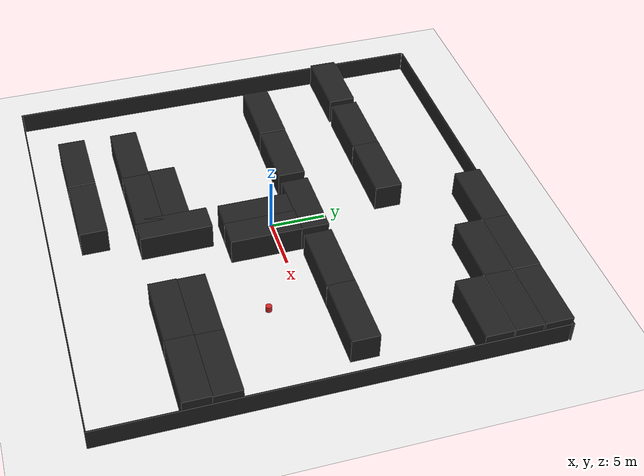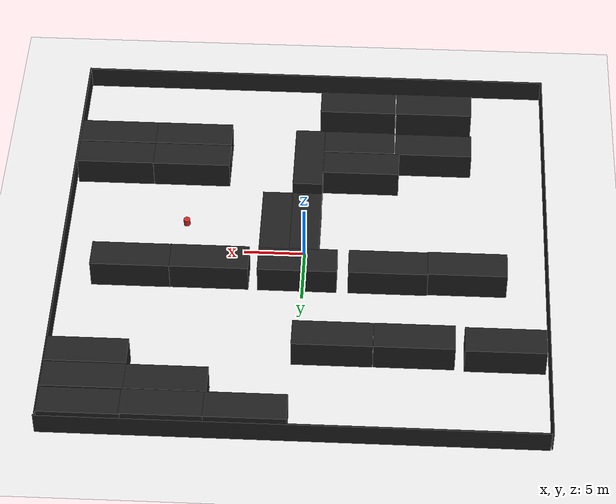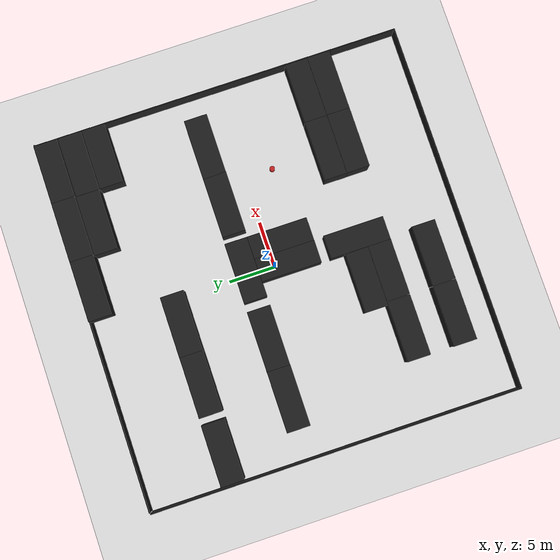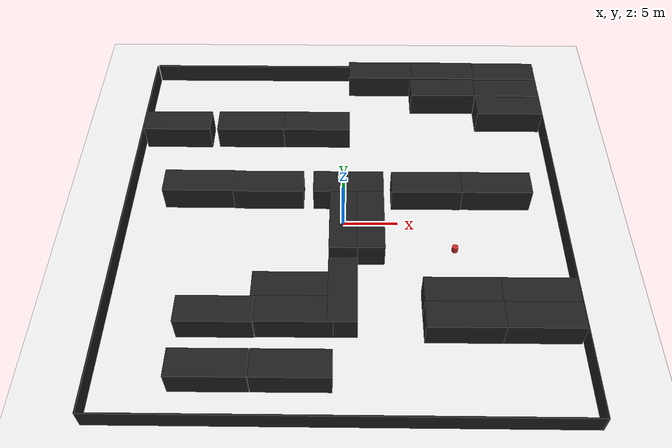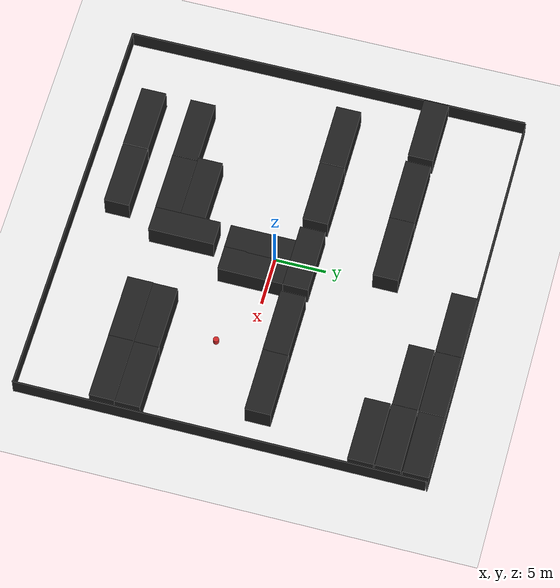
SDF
<sdf version="1.4">
 <world name="default">
  <light name="sun" type="directional">
   <cast_shadows>0</cast_shadows>
   <pose>0 0 10 0 -0 0</pose>
   <diffuse>0.8 0.8 0.8 1</diffuse>
   <specular>0.2 0.2 0.2 1</specular>
   <attenuation>
    <range>1000</range>
    <constant>0.9</constant>
    <linear>0.01</linear>
    <quadratic>0.001</quadratic>
   </attenuation>
   <direction>-0.5 0.1 -0.9</direction>
  </light>
  <model name="ground_plane">
   <static>1</static>
   <link name="link">
    <collision name="collision">
     <geometry><plane><normal>0 0 1</normal><size>100 100</size></plane></geometry>
     <surface><friction><ode><mu>100</mu><mu2>50</mu2></ode></friction></surface>
    </collision>
    <visual name="visual">
     <cast_shadows>0</cast_shadows>
     <geometry><plane><normal>0 0 1</normal><size>40 40</size></plane></geometry>
     <material>
      <script><uri>file://media/materials/scripts/gazebo.material</uri><name>Gazebo/White</name></script>
     </material>
    </visual>
    <velocity_decay><linear>0</linear><angular>0</angular></velocity_decay>
    <gravity>0</gravity>
   </link>
  </model>
  <physics type="ode">
   <max_step_size>0.001</max_step_size>
   <real_time_factor>1</real_time_factor>
   <real_time_update_rate>1000</real_time_update_rate>
   <gravity>0 0 -9.8</gravity>
  </physics>
  <scene><ambient>0.4 0.4 0.4 1</ambient><background>0.7 0.7 0.7 1</background><shadows>0</shadows></scene>
  <model name="wall_1">
   <pose>19.9725 -0.189071 0.990987 0 -0 0</pose>
   <link name="link">
    <inertial>
     <mass>1</mass>
     <inertia><ixx>1</ixx><ixy>0</ixy><ixz>0</ixz><iyy>1</iyy><iyz>0</iyz><izz>1</izz></inertia>
    </inertial>
    <collision name="collision"><geometry><box><size>0.1 40 2</size></box></geometry></collision>
    <visual name="visual">
     <geometry><box><size>0.1 40 2</size></box></geometry>
     <material>
      <script><uri>file://media/materials/scripts/gazebo.material</uri><name>Gazebo/FlatBlack</name></script>
     </material>
    </visual>
    <velocity_decay><linear>0</linear><angular>0</angular></velocity_decay>
    <gravity>0</gravity>
   </link>
   <static>1</static>
  </model>
  <model name="wall_3">
   <pose>-20.0486 -0.037272 0.990987 0 -0 0</pose>
   <link name="link">
    <inertial>
     <mass>1</mass>
     <inertia><ixx>1</ixx><ixy>0</ixy><ixz>0</ixz><iyy>1</iyy><iyz>0</iyz><izz>1</izz></inertia>
    </inertial>
    <collision name="collision"><geometry><box><size>0.1 40 2</size></box></geometry></collision>
    <visual name="visual">
     <geometry><box><size>0.1 40 2</size></box></geometry>
     <material>
      <script><uri>file://media/materials/scripts/gazebo.material</uri><name>Gazebo/FlatBlack</name></script>
     </material>
    </visual>
    <velocity_decay><linear>0</linear><angular>0</angular></velocity_decay>
    <gravity>0</gravity>
   </link>
   <static>1</static>
  </model>
  <model name="wall_2">
   <pose>-0.076077 -20.0521 0.998964 0 0 -1.57334</pose>
   <link name="link">
    <inertial>
     <mass>1</mass>
     <inertia><ixx>1</ixx><ixy>0</ixy><ixz>0</ixz><iyy>1</iyy><iyz>0</iyz><izz>1</izz></inertia>
    </inertial>
    <collision name="collision"><geometry><box><size>0.1 40 2</size></box></geometry></collision>
    <visual name="visual">
     <geometry><box><size>0.1 40 2</size></box></geometry>
     <material>
      <script><uri>file://media/materials/scripts/gazebo.material</uri><name>Gazebo/FlatBlack</name></script>
     </material>
    </visual>
    <velocity_decay><linear>0</linear><angular>0</angular></velocity_decay>
    <gravity>0</gravity>
   </link>
   <static>1</static>
  </model>
  <model name="wall_4">
   <pose>0.081712 19.9897 1.03172 0 0 -1.57159</pose>
   <link name="link">
    <inertial>
     <mass>1</mass>
     <inertia><ixx>1</ixx><ixy>0</ixy><ixz>0</ixz><iyy>1</iyy><iyz>0</iyz><izz>1</izz></inertia>
    </inertial>
    <collision name="collision"><geometry><box><size>0.1 40 2</size></box></geometry></collision>
    <visual name="visual">
     <geometry><box><size>0.1 40 2</size></box></geometry>
     <material>
      <script><uri>file://media/materials/scripts/gazebo.material</uri><name>Gazebo/FlatBlack</name></script>
     </material>
    </visual>
    <velocity_decay><linear>0</linear><angular>0</angular></velocity_decay>
    <gravity>0</gravity>
   </link>
   <static>1</static>
  </model>
  <model name="container_2">
   <pose>-4 -11 1.35468 0 -0 1.57</pose>
   <link name="link">
    <inertial>
     <mass>1</mass>
     <inertia><ixx>1</ixx><ixy>0</ixy><ixz>0</ixz><iyy>1</iyy><iyz>0</iyz><izz>1</izz></inertia>
    </inertial>
    <collision name="collision"><geometry><box><size>2.5 6.5 2.5</size></box></geometry></collision>
    <visual name="visual">
     <geometry><box><size>2.5 6.5 2.5</size></box></geometry>
     <material>
      <script><uri>file://media/materials/scripts/gazebo.material</uri><name>Gazebo/FlatBlack</name></script>
     </material>
    </visual>
    <velocity_decay><linear>0</linear><angular>0</angular></velocity_decay>
    <gravity>0</gravity>
   </link>
   <static>1</static>
  </model>
  <model name="container_3">
   <pose>3.70664 18.752 1.35468 0 0 -1.57154</pose>
   <link name="link">
    <inertial>
     <mass>1</mass>
     <inertia><ixx>1</ixx><ixy>0</ixy><ixz>0</ixz><iyy>1</iyy><iyz>0</iyz><izz>1</izz></inertia>
    </inertial>
    <collision name="collision"><geometry><box><size>2.5 6.5 2.5</size></box></geometry></collision>
    <visual name="visual">
     <geometry><box><size>2.5 6.5 2.5</size></box></geometry>
     <material>
      <script><uri>file://media/materials/scripts/gazebo.material</uri><name>Gazebo/FlatBlack</name></script>
     </material>
    </visual>
    <velocity_decay><linear>0</linear><angular>0</angular></velocity_decay>
    <gravity>0</gravity>
   </link>
   <static>1</static>
  </model>
  <model name="container_4">
   <pose>-9.24517 11.0202 1.35468 0 -0 1.57</pose>
   <link name="link">
    <inertial>
     <mass>1</mass>
     <inertia><ixx>1</ixx><ixy>0</ixy><ixz>0</ixz><iyy>1</iyy><iyz>0</iyz><izz>1</izz></inertia>
    </inertial>
    <collision name="collision"><geometry><box><size>2.5 6.5 2.5</size></box></geometry></collision>
    <visual name="visual">
     <geometry><box><size>2.5 6.5 2.5</size></box></geometry>
     <material>
      <script><uri>file://media/materials/scripts/gazebo.material</uri><name>Gazebo/FlatBlack</name></script>
     </material>
    </visual>
    <velocity_decay><linear>0</linear><angular>0</angular></velocity_decay>
    <gravity>0</gravity>
   </link>
   <static>1</static>
  </model>
  <model name="container_6">
   <pose>-2.7355 11.0272 1.35468 0 -0 1.57</pose>
   <link name="link">
    <inertial>
     <mass>1</mass>
     <inertia><ixx>1</ixx><ixy>0</ixy><ixz>0</ixz><iyy>1</iyy><iyz>0</iyz><izz>1</izz></inertia>
    </inertial>
    <collision name="collision"><geometry><box><size>2.5 6.5 2.5</size></box></geometry></collision>
    <visual name="visual">
     <geometry><box><size>2.5 6.5 2.5</size></box></geometry>
     <material>
      <script><uri>file://media/materials/scripts/gazebo.material</uri><name>Gazebo/FlatBlack</name></script>
     </material>
    </visual>
    <velocity_decay><linear>0</linear><angular>0</angular></velocity_decay>
    <gravity>0</gravity>
   </link>
   <static>1</static>
  </model>
  <model name="container_8">
   <pose>-13.4607 3 1.35468 0 -0 1.57</pose>
   <link name="link">
    <inertial>
     <mass>1</mass>
     <inertia><ixx>1</ixx><ixy>0</ixy><ixz>0</ixz><iyy>1</iyy><iyz>0</iyz><izz>1</izz></inertia>
    </inertial>
    <collision name="collision"><geometry><box><size>2.5 6.5 2.5</size></box></geometry></collision>
    <visual name="visual">
     <geometry><box><size>2.5 6.5 2.5</size></box></geometry>
     <material>
      <script><uri>file://media/materials/scripts/gazebo.material</uri><name>Gazebo/FlatBlack</name></script>
     </material>
    </visual>
    <velocity_decay><linear>0</linear><angular>0</angular></velocity_decay>
    <gravity>0</gravity>
   </link>
   <static>1</static>
  </model>
  <model name="container_25">
   <pose>16.4993 -9 1.26801 0 -0 1.57</pose>
   <link name="link">
    <inertial>
     <mass>1</mass>
     <inertia><ixx>1</ixx><ixy>0</ixy><ixz>0</ixz><iyy>1</iyy><iyz>0</iyz><izz>1</izz></inertia>
    </inertial>
    <collision name="collision"><geometry><box><size>2.5 6.5 2.5</size></box></geometry></collision>
    <visual name="visual">
     <geometry><box><size>2.5 6.5 2.5</size></box></geometry>
     <material>
      <script><uri>file://media/materials/scripts/gazebo.material</uri><name>Gazebo/FlatBlack</name></script>
     </material>
    </visual>
    <velocity_decay><linear>0</linear><angular>0</angular></velocity_decay>
    <gravity>0</gravity>
   </link>
   <static>1</static>
  </model>
  <model name="container_34">
   <pose>-10.5684 -11 1.26801 0 -0 1.57</pose>
   <link name="link">
    <inertial>
     <mass>1</mass>
     <inertia><ixx>1</ixx><ixy>0</ixy><ixz>0</ixz><iyy>1</iyy><iyz>0</iyz><izz>1</izz></inertia>
    </inertial>
    <collision name="collision"><geometry><box><size>2.5 6.5 2.5</size></box></geometry></collision>
    <visual name="visual">
     <geometry><box><size>2.5 6.5 2.5</size></box></geometry>
     <material>
      <script><uri>file://media/materials/scripts/gazebo.material</uri><name>Gazebo/FlatBlack</name></script>
     </material>
    </visual>
    <velocity_decay><linear>0</linear><angular>0</angular></velocity_decay>
    <gravity>0</gravity>
   </link>
   <static>1</static>
  </model>
  <model name="container_32">
   <pose>-4 -16 1.35468 0 -0 1.57</pose>
   <link name="link">
    <inertial>
     <mass>1</mass>
     <inertia><ixx>1</ixx><ixy>0</ixy><ixz>0</ixz><iyy>1</iyy><iyz>0</iyz><izz>1</izz></inertia>
    </inertial>
    <collision name="collision"><geometry><box><size>2.5 6.5 2.5</size></box></geometry></collision>
    <visual name="visual">
     <geometry><box><size>2.5 6.5 2.5</size></box></geometry>
     <material>
      <script><uri>file://media/materials/scripts/gazebo.material</uri><name>Gazebo/FlatBlack</name></script>
     </material>
    </visual>
    <velocity_decay><linear>0</linear><angular>0</angular></velocity_decay>
    <gravity>0</gravity>
   </link>
   <static>1</static>
  </model>
  <model name="container_30">
   <pose>16.5688 13.5087 1.26801 -3.14159 -0 1.57</pose>
   <link name="link">
    <inertial>
     <mass>1</mass>
     <inertia><ixx>1</ixx><ixy>0</ixy><ixz>0</ixz><iyy>1</iyy><iyz>0</iyz><izz>1</izz></inertia>
    </inertial>
    <collision name="collision"><geometry><box><size>2.5 6.5 2.5</size></box></geometry></collision>
    <visual name="visual">
     <geometry><box><size>2.5 6.5 2.5</size></box></geometry>
     <material>
      <script><uri>file://media/materials/scripts/gazebo.material</uri><name>Gazebo/FlatBlack</name></script>
     </material>
    </visual>
    <velocity_decay><linear>0</linear><angular>0</angular></velocity_decay>
    <gravity>0</gravity>
   </link>
   <static>1</static>
  </model>
  <model name="container_23">
   <pose>-16.4892 11.0687 1.26801 0 -0 1.57</pose>
   <link name="link">
    <inertial>
     <mass>1</mass>
     <inertia><ixx>1</ixx><ixy>0</ixy><ixz>0</ixz><iyy>1</iyy><iyz>0</iyz><izz>1</izz></inertia>
    </inertial>
    <collision name="collision"><geometry><box><size>2.5 6.5 2.5</size></box></geometry></collision>
    <visual name="visual">
     <geometry><box><size>2.5 6.5 2.5</size></box></geometry>
     <material>
      <script><uri>file://media/materials/scripts/gazebo.material</uri><name>Gazebo/FlatBlack</name></script>
     </material>
    </visual>
    <velocity_decay><linear>0</linear><angular>0</angular></velocity_decay>
    <gravity>0</gravity>
   </link>
   <static>1</static>
  </model>
  <model name="container_21">
   <pose>-4.40682 -8.54301 1.26801 0 -0 1.57</pose>
   <link name="link">
    <inertial>
     <mass>1</mass>
     <inertia><ixx>1</ixx><ixy>0</ixy><ixz>0</ixz><iyy>1</iyy><iyz>0</iyz><izz>1</izz></inertia>
    </inertial>
    <collision name="collision"><geometry><box><size>2.5 6.5 2.5</size></box></geometry></collision>
    <visual name="visual">
     <geometry><box><size>2.5 6.5 2.5</size></box></geometry>
     <material>
      <script><uri>file://media/materials/scripts/gazebo.material</uri><name>Gazebo/FlatBlack</name></script>
     </material>
    </visual>
    <velocity_decay><linear>0</linear><angular>0</angular></velocity_decay>
    <gravity>0</gravity>
   </link>
   <static>1</static>
  </model>
  <model name="container_10">
   <pose>0 -1.44732 1.26801 0 0 -0.000796</pose>
   <link name="link">
    <inertial>
     <mass>1</mass>
     <inertia><ixx>1</ixx><ixy>0</ixy><ixz>0</ixz><iyy>1</iyy><iyz>0</iyz><izz>1</izz></inertia>
    </inertial>
    <collision name="collision"><geometry><box><size>2.5 6.5 2.5</size></box></geometry></collision>
    <visual name="visual">
     <geometry><box><size>2.5 6.5 2.5</size></box></geometry>
     <material>
      <script><uri>file://media/materials/scripts/gazebo.material</uri><name>Gazebo/FlatBlack</name></script>
     </material>
    </visual>
    <velocity_decay><linear>0</linear><angular>0</angular></velocity_decay>
    <gravity>0</gravity>
   </link>
   <static>1</static>
  </model>
  <model name="container_12">
   <pose>10 -11.454 1.35468 0 -0 1.57</pose>
   <link name="link">
    <inertial>
     <mass>1</mass>
     <inertia><ixx>1</ixx><ixy>0</ixy><ixz>0</ixz><iyy>1</iyy><iyz>0</iyz><izz>1</izz></inertia>
    </inertial>
    <collision name="collision"><geometry><box><size>2.5 6.5 2.5</size></box></geometry></collision>
    <visual name="visual">
     <geometry><box><size>2.5 6.5 2.5</size></box></geometry>
     <material>
      <script><uri>file://media/materials/scripts/gazebo.material</uri><name>Gazebo/FlatBlack</name></script>
     </material>
    </visual>
    <velocity_decay><linear>0</linear><angular>0</angular></velocity_decay>
    <gravity>0</gravity>
   </link>
   <static>1</static>
  </model>
  <model name="container_14">
   <pose>-10.5639 -16 1.35468 0 -0 1.57</pose>
   <link name="link">
    <inertial>
     <mass>1</mass>
     <inertia><ixx>1</ixx><ixy>0</ixy><ixz>0</ixz><iyy>1</iyy><iyz>0</iyz><izz>1</izz></inertia>
    </inertial>
    <collision name="collision"><geometry><box><size>2.5 6.5 2.5</size></box></geometry></collision>
    <visual name="visual">
     <geometry><box><size>2.5 6.5 2.5</size></box></geometry>
     <material>
      <script><uri>file://media/materials/scripts/gazebo.material</uri><name>Gazebo/FlatBlack</name></script>
     </material>
    </visual>
    <velocity_decay><linear>0</linear><angular>0</angular></velocity_decay>
    <gravity>0</gravity>
   </link>
   <static>1</static>
  </model>
  <model name="container_16">
   <pose>0 -9 1.35468 0 0 -0.000796</pose>
   <link name="link">
    <inertial>
     <mass>1</mass>
     <inertia><ixx>1</ixx><ixy>0</ixy><ixz>0</ixz><iyy>1</iyy><iyz>0</iyz><izz>1</izz></inertia>
    </inertial>
    <collision name="collision"><geometry><box><size>2.5 6.5 2.5</size></box></geometry></collision>
    <visual name="visual">
     <geometry><box><size>2.5 6.5 2.5</size></box></geometry>
     <material>
      <script><uri>file://media/materials/scripts/gazebo.material</uri><name>Gazebo/FlatBlack</name></script>
     </material>
    </visual>
    <velocity_decay><linear>0</linear><angular>0</angular></velocity_decay>
    <gravity>0</gravity>
   </link>
   <static>1</static>
  </model>
  <model name="container_18">
   <pose>2.41996 -1.44459 1.26801 0 0 -0.000796</pose>
   <link name="link">
    <inertial>
     <mass>1</mass>
     <inertia><ixx>1</ixx><ixy>0</ixy><ixz>0</ixz><iyy>1</iyy><iyz>0</iyz><izz>1</izz></inertia>
    </inertial>
    <collision name="collision"><geometry><box><size>2.5 6.5 2.5</size></box></geometry></collision>
    <visual name="visual">
     <geometry><box><size>2.5 6.5 2.5</size></box></geometry>
     <material>
      <script><uri>file://media/materials/scripts/gazebo.material</uri><name>Gazebo/FlatBlack</name></script>
     </material>
    </visual>
    <velocity_decay><linear>0</linear><angular>0</angular></velocity_decay>
    <gravity>0</gravity>
   </link>
   <static>1</static>
  </model>
  <model name="container_09">
   <pose>16.5688 18.7545 1.26801 0 -0 1.57</pose>
   <link name="link">
    <inertial>
     <mass>1</mass>
     <inertia><ixx>1</ixx><ixy>0</ixy><ixz>0</ixz><iyy>1</iyy><iyz>0</iyz><izz>1</izz></inertia>
    </inertial>
    <collision name="collision"><geometry><box><size>2.5 6.5 2.5</size></box></geometry></collision>
    <visual name="visual">
     <geometry><box><size>2.5 6.5 2.5</size></box></geometry>
     <material>
      <script><uri>file://media/materials/scripts/gazebo.material</uri><name>Gazebo/FlatBlack</name></script>
     </material>
    </visual>
    <velocity_decay><linear>0</linear><angular>0</angular></velocity_decay>
    <gravity>0</gravity>
   </link>
   <static>1</static>
  </model>
  <model name="container_08">
   <pose>16.5688 16.1109 1.26801 0 -0 1.57</pose>
   <link name="link">
    <inertial>
     <mass>1</mass>
     <inertia><ixx>1</ixx><ixy>0</ixy><ixz>0</ixz><iyy>1</iyy><iyz>0</iyz><izz>1</izz></inertia>
    </inertial>
    <collision name="collision"><geometry><box><size>2.5 6.5 2.5</size></box></geometry></collision>
    <visual name="visual">
     <geometry><box><size>2.5 6.5 2.5</size></box></geometry>
     <material>
      <script><uri>file://media/materials/scripts/gazebo.material</uri><name>Gazebo/FlatBlack</name></script>
     </material>
    </visual>
    <velocity_decay><linear>0</linear><angular>0</angular></velocity_decay>
    <gravity>0</gravity>
   </link>
   <static>1</static>
  </model>
  <model name="container_07">
   <pose>10.1704 18.7545 1.34432 -3.14159 -0 -1.57159</pose>
   <link name="link">
    <inertial>
     <mass>1</mass>
     <inertia><ixx>1</ixx><ixy>0</ixy><ixz>0</ixz><iyy>1</iyy><iyz>0</iyz><izz>1</izz></inertia>
    </inertial>
    <collision name="collision"><geometry><box><size>2.5 6.5 2.5</size></box></geometry></collision>
    <visual name="visual">
     <geometry><box><size>2.5 6.5 2.5</size></box></geometry>
     <material>
      <script><uri>file://media/materials/scripts/gazebo.material</uri><name>Gazebo/FlatBlack</name></script>
     </material>
    </visual>
    <velocity_decay><linear>0</linear><angular>0</angular></velocity_decay>
    <gravity>0</gravity>
   </link>
   <static>1</static>
  </model>
  <model name="container_06">
   <pose>7.67105 2.97537 1.26801 0 -0 1.57</pose>
   <link name="link">
    <inertial>
     <mass>1</mass>
     <inertia><ixx>1</ixx><ixy>0</ixy><ixz>0</ixz><iyy>1</iyy><iyz>0</iyz><izz>1</izz></inertia>
    </inertial>
    <collision name="collision"><geometry><box><size>2.5 6.5 2.5</size></box></geometry></collision>
    <visual name="visual">
     <geometry><box><size>2.5 6.5 2.5</size></box></geometry>
     <material>
      <script><uri>file://media/materials/scripts/gazebo.material</uri><name>Gazebo/FlatBlack</name></script>
     </material>
    </visual>
    <velocity_decay><linear>0</linear><angular>0</angular></velocity_decay>
    <gravity>0</gravity>
   </link>
   <static>1</static>
  </model>
  <model name="container_05">
   <pose>14.1273 2.9837 1.26801 0 -0 1.57</pose>
   <link name="link">
    <inertial>
     <mass>1</mass>
     <inertia><ixx>1</ixx><ixy>0</ixy><ixz>0</ixz><iyy>1</iyy><iyz>0</iyz><izz>1</izz></inertia>
    </inertial>
    <collision name="collision"><geometry><box><size>2.5 6.5 2.5</size></box></geometry></collision>
    <visual name="visual">
     <geometry><box><size>2.5 6.5 2.5</size></box></geometry>
     <material>
      <script><uri>file://media/materials/scripts/gazebo.material</uri><name>Gazebo/FlatBlack</name></script>
     </material>
    </visual>
    <velocity_decay><linear>0</linear><angular>0</angular></velocity_decay>
    <gravity>0</gravity>
   </link>
   <static>1</static>
  </model>
  <model name="container_04">
   <pose>10.0641 16.1526 1.26801 0 -0 1.57</pose>
   <link name="link">
    <inertial>
     <mass>1</mass>
     <inertia><ixx>1</ixx><ixy>0</ixy><ixz>0</ixz><iyy>1</iyy><iyz>0</iyz><izz>1</izz></inertia>
    </inertial>
    <collision name="collision"><geometry><box><size>2.5 6.5 2.5</size></box></geometry></collision>
    <visual name="visual">
     <geometry><box><size>2.5 6.5 2.5</size></box></geometry>
     <material>
      <script><uri>file://media/materials/scripts/gazebo.material</uri><name>Gazebo/FlatBlack</name></script>
     </material>
    </visual>
    <velocity_decay><linear>0</linear><angular>0</angular></velocity_decay>
    <gravity>0</gravity>
   </link>
   <static>1</static>
  </model>
  <model name="container_03">
   <pose>-7 3 1.26801 0 -0 1.57</pose>
   <link name="link">
    <inertial>
     <mass>1</mass>
     <inertia><ixx>1</ixx><ixy>0</ixy><ixz>0</ixz><iyy>1</iyy><iyz>0</iyz><izz>1</izz></inertia>
    </inertial>
    <collision name="collision"><geometry><box><size>2.5 6.5 2.5</size></box></geometry></collision>
    <visual name="visual">
     <geometry><box><size>2.5 6.5 2.5</size></box></geometry>
     <material>
      <script><uri>file://media/materials/scripts/gazebo.material</uri><name>Gazebo/FlatBlack</name></script>
     </material>
    </visual>
    <velocity_decay><linear>0</linear><angular>0</angular></velocity_decay>
    <gravity>0</gravity>
   </link>
   <static>1</static>
  </model>
  <model name="container_02">
   <pose>0.430769 3 1.26801 0 -0 1.57</pose>
   <link name="link">
    <inertial>
     <mass>1</mass>
     <inertia><ixx>1</ixx><ixy>0</ixy><ixz>0</ixz><iyy>1</iyy><iyz>0</iyz><izz>1</izz></inertia>
    </inertial>
    <collision name="collision"><geometry><box><size>2.5 6.5 2.5</size></box></geometry></collision>
    <visual name="visual">
     <geometry><box><size>2.5 6.5 2.5</size></box></geometry>
     <material>
      <script><uri>file://media/materials/scripts/gazebo.material</uri><name>Gazebo/FlatBlack</name></script>
     </material>
    </visual>
    <velocity_decay><linear>0</linear><angular>0</angular></velocity_decay>
    <gravity>0</gravity>
   </link>
   <static>1</static>
  </model>
  <model name="container_01">
   <pose>16.4957 -11.4541 1.35468 0 -0 1.57</pose>
   <link name="link">
    <inertial>
     <mass>1</mass>
     <inertia><ixx>1</ixx><ixy>0</ixy><ixz>0</ixz><iyy>1</iyy><iyz>0</iyz><izz>1</izz></inertia>
    </inertial>
    <collision name="collision"><geometry><box><size>2.5 6.5 2.5</size></box></geometry></collision>
    <visual name="visual">
     <geometry><box><size>2.5 6.5 2.5</size></box></geometry>
     <material>
      <script><uri>file://media/materials/scripts/gazebo.material</uri><name>Gazebo/FlatBlack</name></script>
     </material>
    </visual>
    <velocity_decay><linear>0</linear><angular>0</angular></velocity_decay>
    <gravity>0</gravity>
   </link>
   <static>1</static>
  </model>
  <model name="container_20">
   <pose>10 -9 1.26801 0 -0 1.57</pose>
   <link name="link">
    <inertial>
     <mass>1</mass>
     <inertia><ixx>1</ixx><ixy>0</ixy><ixz>0</ixz><iyy>1</iyy><iyz>0</iyz><izz>1</izz></inertia>
    </inertial>
    <collision name="collision"><geometry><box><size>2.5 6.5 2.5</size></box></geometry></collision>
    <visual name="visual">
     <geometry><box><size>2.5 6.5 2.5</size></box></geometry>
     <material>
      <script><uri>file://media/materials/scripts/gazebo.material</uri><name>Gazebo/FlatBlack</name></script>
     </material>
    </visual>
    <velocity_decay><linear>0</linear><angular>0</angular></velocity_decay>
    <gravity>0</gravity>
   </link>
   <static>1</static>
  </model>
  <spherical_coordinates>
   <surface_model>EARTH_WGS84</surface_model>
   <latitude_deg>0</latitude_deg>
   <longitude_deg>0</longitude_deg>
   <elevation>0</elevation>
   <heading_deg>0</heading_deg>
  </spherical_coordinates>
  <model name="bomb">
   <pose>10.0499 -3.08534 0.287749 0 -0 0</pose>
   <link name="link">
    <inertial>
     <mass>1</mass>
     <inertia><ixx>0.145833</ixx><ixy>0</ixy><ixz>0</ixz><iyy>0.145833</iyy><iyz>0</iyz><izz>0.125</izz></inertia>
    </inertial>
    <collision name="collision">
     <geometry><cylinder><radius>0.277419</radius><length>0.575516</length></cylinder></geometry>
    </collision>
    <visual name="visual">
     <geometry><cylinder><radius>0.277419</radius><length>0.575516</length></cylinder></geometry>
     <material>
      <script><name>Gazebo/Red</name><uri>file://media/materials/scripts/gazebo.material</uri></script>
      <ambient>1 0 0 1</ambient>
      <diffuse>1 0 0 1</diffuse>
      <specular>0.1 0.1 0.1 1</specular>
      <emissive>0 0 0 1</emissive>
      <shader type="pixel"/>
     </material>
    </visual>
    <velocity_decay><linear>0</linear><angular>0</angular></velocity_decay>
   </link>
   <static>0</static>
  </model>
 </world>
</sdf>
